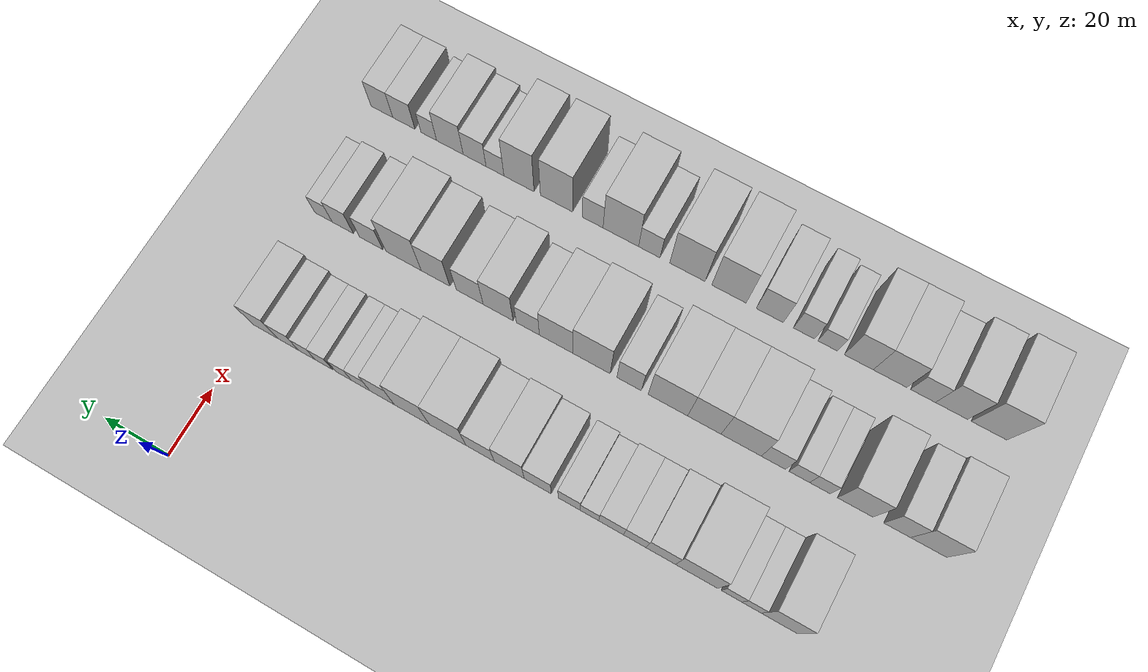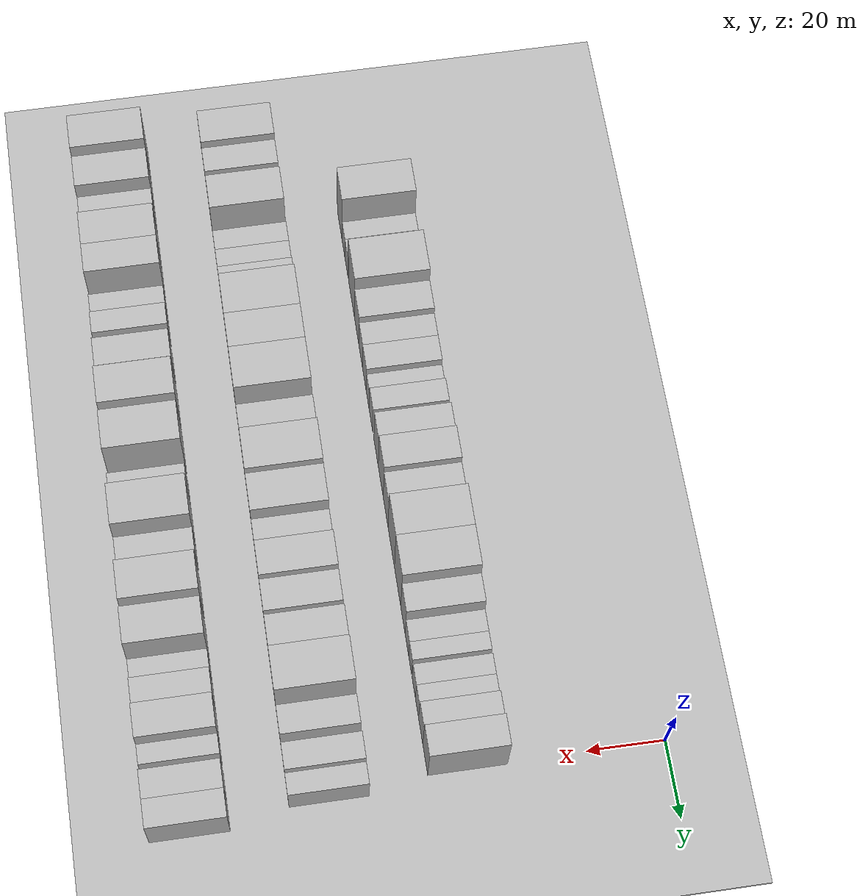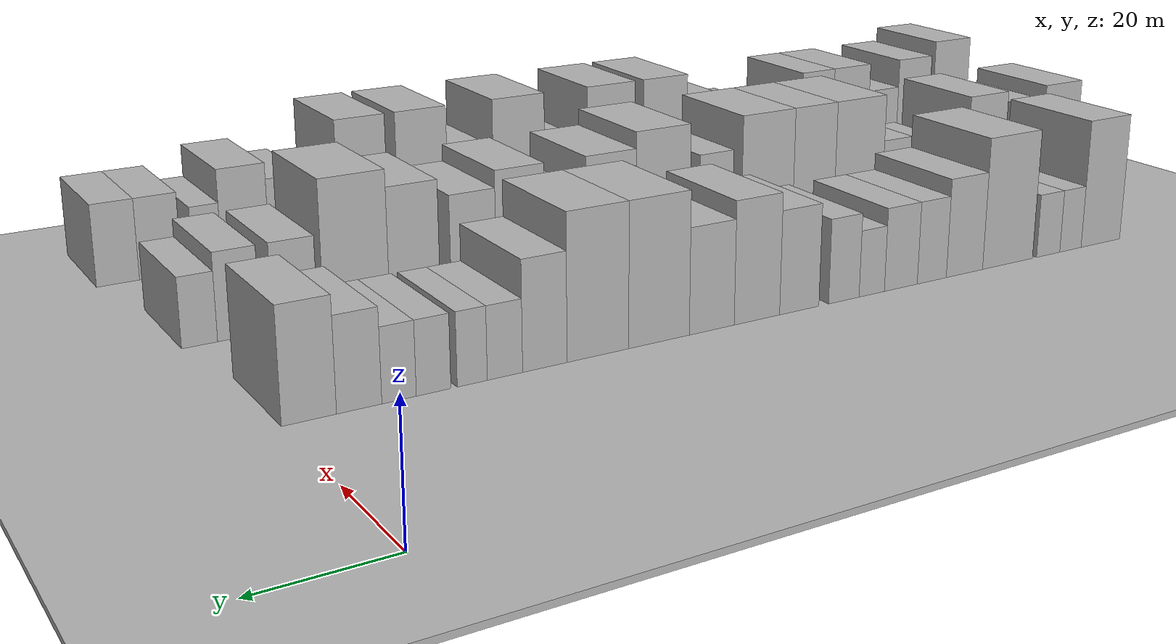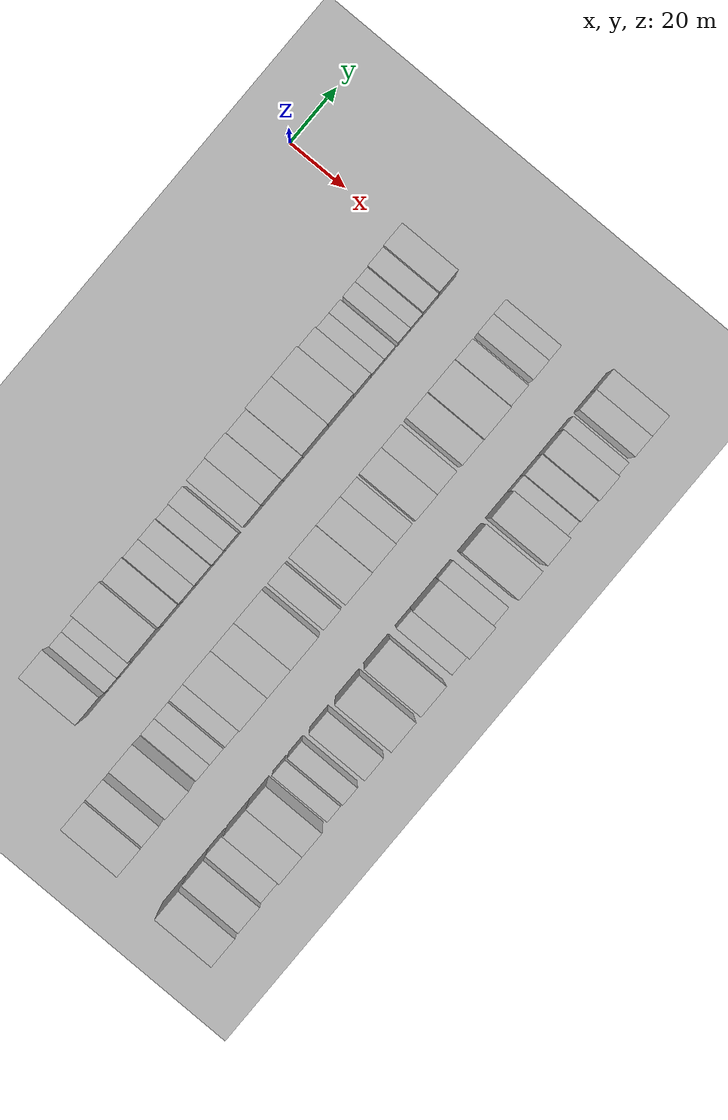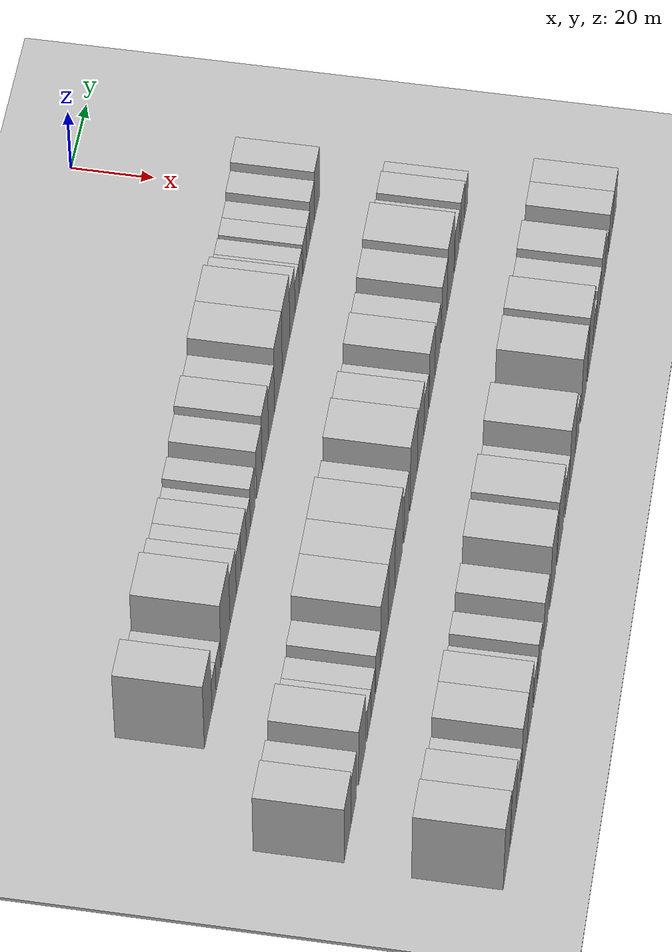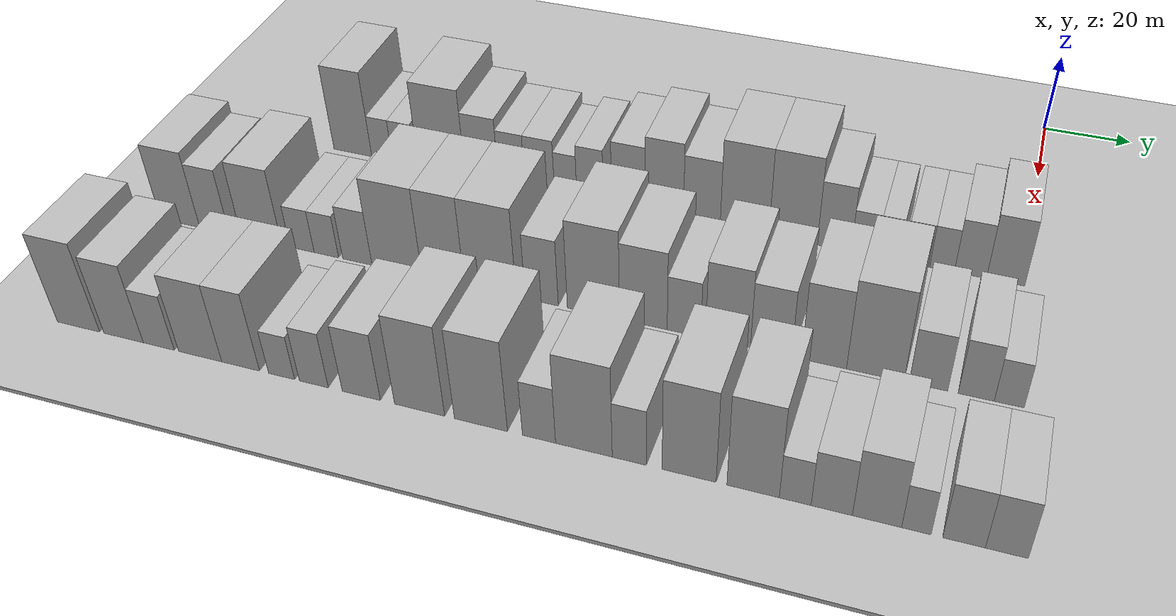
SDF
<sdf version="1.6">
 <world name="default">
  <include><name>ground_plane_1</name><uri>model://HANNAS_ground_plane</uri></include>
  <include>
   <name>ground_plane_2</name>
   <uri>model://HANNAS_ground_plane</uri>
   <pose>100 0 0  0 0 0</pose>
  </include>
  <model name="building_20">
   <static>1</static>
   <pose>50.0000 -155.9220 0 0.000000 0.000000 0.000000</pose>
   <link name="link">
    <pose>0 0 12.00 0 0 0</pose>
    <collision name="collision"><geometry><box><size>20.0000 9.9083 24.0000</size></box></geometry></collision>
    <visual name="visual">
     <cast_shadows>0</cast_shadows>
     <geometry><box><size>20.0000 9.9083 24.0000</size></box></geometry>
     <material>
      <script>
       <uri>model://HANNAS_wall/materials/scripts</uri>
       <uri>model://HANNAS_wall/materials/textures</uri>
       <name>vrc/HANNAS_wall</name>
      </script>
     </material>
    </visual>
   </link>
  </model>
  <model name="building_21">
   <static>1</static>
   <pose>50.0000 -148.2949 0 0.000000 0.000000 0.000000</pose>
   <link name="link">
    <pose>0 0 6.00 0 0 0</pose>
    <collision name="collision"><geometry><box><size>20.0000 5.3460 12.0000</size></box></geometry></collision>
    <visual name="visual">
     <cast_shadows>0</cast_shadows>
     <geometry><box><size>20.0000 5.3460 12.0000</size></box></geometry>
     <material>
      <script>
       <uri>model://HANNAS_wall/materials/scripts</uri>
       <uri>model://HANNAS_wall/materials/textures</uri>
       <name>vrc/HANNAS_wall</name>
      </script>
     </material>
    </visual>
   </link>
  </model>
  <model name="building_22">
   <static>1</static>
   <pose>50.0000 -142.7699 0 0.000000 0.000000 0.000000</pose>
   <link name="link">
    <pose>0 0 6.00 0 0 0</pose>
    <collision name="collision"><geometry><box><size>20.0000 5.7038 12.0000</size></box></geometry></collision>
    <visual name="visual">
     <cast_shadows>0</cast_shadows>
     <geometry><box><size>20.0000 5.7038 12.0000</size></box></geometry>
     <material>
      <script>
       <uri>model://HANNAS_wall/materials/scripts</uri>
       <uri>model://HANNAS_wall/materials/textures</uri>
       <name>vrc/HANNAS_wall</name>
      </script>
     </material>
    </visual>
   </link>
  </model>
  <model name="building_23">
   <static>1</static>
   <pose>50.0000 -132.9776 0 0.000000 0.000000 0.000000</pose>
   <link name="link">
    <pose>0 0 12.00 0 0 0</pose>
    <collision name="collision"><geometry><box><size>20.0000 11.8810 24.0000</size></box></geometry></collision>
    <visual name="visual">
     <cast_shadows>0</cast_shadows>
     <geometry><box><size>20.0000 11.8810 24.0000</size></box></geometry>
     <material>
      <script>
       <uri>model://HANNAS_wall/materials/scripts</uri>
       <uri>model://HANNAS_wall/materials/textures</uri>
       <name>vrc/HANNAS_wall</name>
      </script>
     </material>
    </visual>
   </link>
  </model>
  <model name="building_24">
   <static>1</static>
   <pose>50.0000 -122.8641 0 0.000000 0.000000 0.000000</pose>
   <link name="link">
    <pose>0 0 9.00 0 0 0</pose>
    <collision name="collision"><geometry><box><size>20.0000 8.3459 18.0000</size></box></geometry></collision>
    <visual name="visual">
     <cast_shadows>0</cast_shadows>
     <geometry><box><size>20.0000 8.3459 18.0000</size></box></geometry>
     <material>
      <script>
       <uri>model://HANNAS_wall/materials/scripts</uri>
       <uri>model://HANNAS_wall/materials/textures</uri>
       <name>vrc/HANNAS_wall</name>
      </script>
     </material>
    </visual>
   </link>
  </model>
  <model name="building_25">
   <static>1</static>
   <pose>50.0000 -115.4376 0 0.000000 0.000000 0.000000</pose>
   <link name="link">
    <pose>0 0 7.50 0 0 0</pose>
    <collision name="collision"><geometry><box><size>20.0000 6.5071 15.0000</size></box></geometry></collision>
    <visual name="visual">
     <cast_shadows>0</cast_shadows>
     <geometry><box><size>20.0000 6.5071 15.0000</size></box></geometry>
     <material>
      <script>
       <uri>model://HANNAS_wall/materials/scripts</uri>
       <uri>model://HANNAS_wall/materials/textures</uri>
       <name>vrc/HANNAS_wall</name>
      </script>
     </material>
    </visual>
   </link>
  </model>
  <model name="building_26">
   <static>1</static>
   <pose>50.0000 -108.5881 0 0.000000 0.000000 0.000000</pose>
   <link name="link">
    <pose>0 0 7.50 0 0 0</pose>
    <collision name="collision"><geometry><box><size>20.0000 7.1920 15.0000</size></box></geometry></collision>
    <visual name="visual">
     <cast_shadows>0</cast_shadows>
     <geometry><box><size>20.0000 7.1920 15.0000</size></box></geometry>
     <material>
      <script>
       <uri>model://HANNAS_wall/materials/scripts</uri>
       <uri>model://HANNAS_wall/materials/textures</uri>
       <name>vrc/HANNAS_wall</name>
      </script>
     </material>
    </visual>
   </link>
  </model>
  <model name="building_27">
   <static>1</static>
   <pose>50.0000 -102.2890 0 0.000000 0.000000 0.000000</pose>
   <link name="link">
    <pose>0 0 6.00 0 0 0</pose>
    <collision name="collision"><geometry><box><size>20.0000 5.4062 12.0000</size></box></geometry></collision>
    <visual name="visual">
     <cast_shadows>0</cast_shadows>
     <geometry><box><size>20.0000 5.4062 12.0000</size></box></geometry>
     <material>
      <script>
       <uri>model://HANNAS_wall/materials/scripts</uri>
       <uri>model://HANNAS_wall/materials/textures</uri>
       <name>vrc/HANNAS_wall</name>
      </script>
     </material>
    </visual>
   </link>
  </model>
  <model name="building_28">
   <static>1</static>
   <pose>50.0000 -96.3945 0 0.000000 0.000000 0.000000</pose>
   <link name="link">
    <pose>0 0 7.50 0 0 0</pose>
    <collision name="collision"><geometry><box><size>20.0000 6.3829 15.0000</size></box></geometry></collision>
    <visual name="visual">
     <cast_shadows>0</cast_shadows>
     <geometry><box><size>20.0000 6.3829 15.0000</size></box></geometry>
     <material>
      <script>
       <uri>model://HANNAS_wall/materials/scripts</uri>
       <uri>model://HANNAS_wall/materials/textures</uri>
       <name>vrc/HANNAS_wall</name>
      </script>
     </material>
    </visual>
   </link>
  </model>
  <model name="building_29">
   <static>1</static>
   <pose>50.0000 -87.2331 0 0.000000 0.000000 0.000000</pose>
   <link name="link">
    <pose>0 0 9.00 0 0 0</pose>
    <collision name="collision"><geometry><box><size>20.0000 7.9398 18.0000</size></box></geometry></collision>
    <visual name="visual">
     <cast_shadows>0</cast_shadows>
     <geometry><box><size>20.0000 7.9398 18.0000</size></box></geometry>
     <material>
      <script>
       <uri>model://HANNAS_wall/materials/scripts</uri>
       <uri>model://HANNAS_wall/materials/textures</uri>
       <name>vrc/HANNAS_wall</name>
      </script>
     </material>
    </visual>
   </link>
  </model>
  <model name="building_30">
   <static>1</static>
   <pose>50.0000 -78.8094 0 0.000000 0.000000 0.000000</pose>
   <link name="link">
    <pose>0 0 10.50 0 0 0</pose>
    <collision name="collision"><geometry><box><size>20.0000 8.9076 21.0000</size></box></geometry></collision>
    <visual name="visual">
     <cast_shadows>0</cast_shadows>
     <geometry><box><size>20.0000 8.9076 21.0000</size></box></geometry>
     <material>
      <script>
       <uri>model://HANNAS_wall/materials/scripts</uri>
       <uri>model://HANNAS_wall/materials/textures</uri>
       <name>vrc/HANNAS_wall</name>
      </script>
     </material>
    </visual>
   </link>
  </model>
  <model name="building_31">
   <static>1</static>
   <pose>50.0000 -70.1065 0 0.000000 0.000000 0.000000</pose>
   <link name="link">
    <pose>0 0 9.00 0 0 0</pose>
    <collision name="collision"><geometry><box><size>20.0000 8.4981 18.0000</size></box></geometry></collision>
    <visual name="visual">
     <cast_shadows>0</cast_shadows>
     <geometry><box><size>20.0000 8.4981 18.0000</size></box></geometry>
     <material>
      <script>
       <uri>model://HANNAS_wall/materials/scripts</uri>
       <uri>model://HANNAS_wall/materials/textures</uri>
       <name>vrc/HANNAS_wall</name>
      </script>
     </material>
    </visual>
   </link>
  </model>
  <model name="building_32">
   <static>1</static>
   <pose>50.0000 -60.3243 0 0.000000 0.000000 0.000000</pose>
   <link name="link">
    <pose>0 0 12.00 0 0 0</pose>
    <collision name="collision"><geometry><box><size>20.0000 11.0664 24.0000</size></box></geometry></collision>
    <visual name="visual">
     <cast_shadows>0</cast_shadows>
     <geometry><box><size>20.0000 11.0664 24.0000</size></box></geometry>
     <material>
      <script>
       <uri>model://HANNAS_wall/materials/scripts</uri>
       <uri>model://HANNAS_wall/materials/textures</uri>
       <name>vrc/HANNAS_wall</name>
      </script>
     </material>
    </visual>
   </link>
  </model>
  <model name="building_33">
   <static>1</static>
   <pose>50.0000 -49.4066 0 0.000000 0.000000 0.000000</pose>
   <link name="link">
    <pose>0 0 12.00 0 0 0</pose>
    <collision name="collision"><geometry><box><size>20.0000 10.7689 24.0000</size></box></geometry></collision>
    <visual name="visual">
     <cast_shadows>0</cast_shadows>
     <geometry><box><size>20.0000 10.7689 24.0000</size></box></geometry>
     <material>
      <script>
       <uri>model://HANNAS_wall/materials/scripts</uri>
       <uri>model://HANNAS_wall/materials/textures</uri>
       <name>vrc/HANNAS_wall</name>
      </script>
     </material>
    </visual>
   </link>
  </model>
  <model name="building_34">
   <static>1</static>
   <pose>50.0000 -40.2784 0 0.000000 0.000000 0.000000</pose>
   <link name="link">
    <pose>0 0 9.00 0 0 0</pose>
    <collision name="collision"><geometry><box><size>20.0000 7.4877 18.0000</size></box></geometry></collision>
    <visual name="visual">
     <cast_shadows>0</cast_shadows>
     <geometry><box><size>20.0000 7.4877 18.0000</size></box></geometry>
     <material>
      <script>
       <uri>model://HANNAS_wall/materials/scripts</uri>
       <uri>model://HANNAS_wall/materials/textures</uri>
       <name>vrc/HANNAS_wall</name>
      </script>
     </material>
    </visual>
   </link>
  </model>
  <model name="building_35">
   <static>1</static>
   <pose>50.0000 -33.6396 0 0.000000 0.000000 0.000000</pose>
   <link name="link">
    <pose>0 0 6.00 0 0 0</pose>
    <collision name="collision"><geometry><box><size>20.0000 5.7900 12.0000</size></box></geometry></collision>
    <visual name="visual">
     <cast_shadows>0</cast_shadows>
     <geometry><box><size>20.0000 5.7900 12.0000</size></box></geometry>
     <material>
      <script>
       <uri>model://HANNAS_wall/materials/scripts</uri>
       <uri>model://HANNAS_wall/materials/textures</uri>
       <name>vrc/HANNAS_wall</name>
      </script>
     </material>
    </visual>
   </link>
  </model>
  <model name="building_36">
   <static>1</static>
   <pose>50.0000 -28.3302 0 0.000000 0.000000 0.000000</pose>
   <link name="link">
    <pose>0 0 6.00 0 0 0</pose>
    <collision name="collision"><geometry><box><size>20.0000 4.8289 12.0000</size></box></geometry></collision>
    <visual name="visual">
     <cast_shadows>0</cast_shadows>
     <geometry><box><size>20.0000 4.8289 12.0000</size></box></geometry>
     <material>
      <script>
       <uri>model://HANNAS_wall/materials/scripts</uri>
       <uri>model://HANNAS_wall/materials/textures</uri>
       <name>vrc/HANNAS_wall</name>
      </script>
     </material>
    </visual>
   </link>
  </model>
  <model name="building_37">
   <static>1</static>
   <pose>50.0000 -22.2142 0 0.000000 0.000000 0.000000</pose>
   <link name="link">
    <pose>0 0 6.00 0 0 0</pose>
    <collision name="collision"><geometry><box><size>20.0000 5.4031 12.0000</size></box></geometry></collision>
    <visual name="visual">
     <cast_shadows>0</cast_shadows>
     <geometry><box><size>20.0000 5.4031 12.0000</size></box></geometry>
     <material>
      <script>
       <uri>model://HANNAS_wall/materials/scripts</uri>
       <uri>model://HANNAS_wall/materials/textures</uri>
       <name>vrc/HANNAS_wall</name>
      </script>
     </material>
    </visual>
   </link>
  </model>
  <model name="building_38">
   <static>1</static>
   <pose>50.0000 -16.8814 0 0.000000 0.000000 0.000000</pose>
   <link name="link">
    <pose>0 0 6.00 0 0 0</pose>
    <collision name="collision"><geometry><box><size>20.0000 5.2625 12.0000</size></box></geometry></collision>
    <visual name="visual">
     <cast_shadows>0</cast_shadows>
     <geometry><box><size>20.0000 5.2625 12.0000</size></box></geometry>
     <material>
      <script>
       <uri>model://HANNAS_wall/materials/scripts</uri>
       <uri>model://HANNAS_wall/materials/textures</uri>
       <name>vrc/HANNAS_wall</name>
      </script>
     </material>
    </visual>
   </link>
  </model>
  <model name="building_39">
   <static>1</static>
   <pose>50.0000 -10.8758 0 0.000000 0.000000 0.000000</pose>
   <link name="link">
    <pose>0 0 7.50 0 0 0</pose>
    <collision name="collision"><geometry><box><size>20.0000 6.7487 15.0000</size></box></geometry></collision>
    <visual name="visual">
     <cast_shadows>0</cast_shadows>
     <geometry><box><size>20.0000 6.7487 15.0000</size></box></geometry>
     <material>
      <script>
       <uri>model://HANNAS_wall/materials/scripts</uri>
       <uri>model://HANNAS_wall/materials/textures</uri>
       <name>vrc/HANNAS_wall</name>
      </script>
     </material>
    </visual>
   </link>
  </model>
  <model name="building_40">
   <static>1</static>
   <pose>50.0000 -3.5136 0 0.000000 0.000000 0.000000</pose>
   <link name="link">
    <pose>0 0 9.00 0 0 0</pose>
    <collision name="collision"><geometry><box><size>20.0000 7.9757 18.0000</size></box></geometry></collision>
    <visual name="visual">
     <cast_shadows>0</cast_shadows>
     <geometry><box><size>20.0000 7.9757 18.0000</size></box></geometry>
     <material>
      <script>
       <uri>model://HANNAS_wall/materials/scripts</uri>
       <uri>model://HANNAS_wall/materials/textures</uri>
       <name>vrc/HANNAS_wall</name>
      </script>
     </material>
    </visual>
   </link>
  </model>
  <model name="building_103">
   <static>1</static>
   <pose>85.0000 -180.6972 0 0.000000 0.000000 0.000000</pose>
   <link name="link">
    <pose>0 0 10.50 0 0 0</pose>
    <collision name="collision"><geometry><box><size>20.0000 9.9502 21.0000</size></box></geometry></collision>
    <visual name="visual">
     <cast_shadows>0</cast_shadows>
     <geometry><box><size>20.0000 9.9502 21.0000</size></box></geometry>
     <material>
      <script>
       <uri>model://HANNAS_wall/materials/scripts</uri>
       <uri>model://HANNAS_wall/materials/textures</uri>
       <name>vrc/HANNAS_wall</name>
      </script>
     </material>
    </visual>
   </link>
  </model>
  <model name="building_104">
   <static>1</static>
   <pose>85.0000 -172.0130 0 0.000000 0.000000 0.000000</pose>
   <link name="link">
    <pose>0 0 9.00 0 0 0</pose>
    <collision name="collision"><geometry><box><size>20.0000 7.4181 18.0000</size></box></geometry></collision>
    <visual name="visual">
     <cast_shadows>0</cast_shadows>
     <geometry><box><size>20.0000 7.4181 18.0000</size></box></geometry>
     <material>
      <script>
       <uri>model://HANNAS_wall/materials/scripts</uri>
       <uri>model://HANNAS_wall/materials/textures</uri>
       <name>vrc/HANNAS_wall</name>
      </script>
     </material>
    </visual>
   </link>
  </model>
  <model name="building_105">
   <static>1</static>
   <pose>85.0000 -160.3200 0 0.000000 0.000000 0.000000</pose>
   <link name="link">
    <pose>0 0 10.50 0 0 0</pose>
    <collision name="collision"><geometry><box><size>20.0000 9.9679 21.0000</size></box></geometry></collision>
    <visual name="visual">
     <cast_shadows>0</cast_shadows>
     <geometry><box><size>20.0000 9.9679 21.0000</size></box></geometry>
     <material>
      <script>
       <uri>model://HANNAS_wall/materials/scripts</uri>
       <uri>model://HANNAS_wall/materials/textures</uri>
       <name>vrc/HANNAS_wall</name>
      </script>
     </material>
    </visual>
   </link>
  </model>
  <model name="building_106">
   <static>1</static>
   <pose>85.0000 -150.4107 0 0.000000 0.000000 0.000000</pose>
   <link name="link">
    <pose>0 0 6.00 0 0 0</pose>
    <collision name="collision"><geometry><box><size>20.0000 5.8508 12.0000</size></box></geometry></collision>
    <visual name="visual">
     <cast_shadows>0</cast_shadows>
     <geometry><box><size>20.0000 5.8508 12.0000</size></box></geometry>
     <material>
      <script>
       <uri>model://HANNAS_wall/materials/scripts</uri>
       <uri>model://HANNAS_wall/materials/textures</uri>
       <name>vrc/HANNAS_wall</name>
      </script>
     </material>
    </visual>
   </link>
  </model>
  <model name="building_107">
   <static>1</static>
   <pose>85.0000 -144.5502 0 0.000000 0.000000 0.000000</pose>
   <link name="link">
    <pose>0 0 6.00 0 0 0</pose>
    <collision name="collision"><geometry><box><size>20.0000 5.8700 12.0000</size></box></geometry></collision>
    <visual name="visual">
     <cast_shadows>0</cast_shadows>
     <geometry><box><size>20.0000 5.8700 12.0000</size></box></geometry>
     <material>
      <script>
       <uri>model://HANNAS_wall/materials/scripts</uri>
       <uri>model://HANNAS_wall/materials/textures</uri>
       <name>vrc/HANNAS_wall</name>
      </script>
     </material>
    </visual>
   </link>
  </model>
  <model name="building_108">
   <static>1</static>
   <pose>85.0000 -137.1453 0 0.000000 0.000000 0.000000</pose>
   <link name="link">
    <pose>0 0 7.50 0 0 0</pose>
    <collision name="collision"><geometry><box><size>20.0000 6.9399 15.0000</size></box></geometry></collision>
    <visual name="visual">
     <cast_shadows>0</cast_shadows>
     <geometry><box><size>20.0000 6.9399 15.0000</size></box></geometry>
     <material>
      <script>
       <uri>model://HANNAS_wall/materials/scripts</uri>
       <uri>model://HANNAS_wall/materials/textures</uri>
       <name>vrc/HANNAS_wall</name>
      </script>
     </material>
    </visual>
   </link>
  </model>
  <model name="building_109">
   <static>1</static>
   <pose>85.0000 -127.8281 0 0.000000 0.000000 0.000000</pose>
   <link name="link">
    <pose>0 0 12.00 0 0 0</pose>
    <collision name="collision"><geometry><box><size>20.0000 11.6945 24.0000</size></box></geometry></collision>
    <visual name="visual">
     <cast_shadows>0</cast_shadows>
     <geometry><box><size>20.0000 11.6945 24.0000</size></box></geometry>
     <material>
      <script>
       <uri>model://HANNAS_wall/materials/scripts</uri>
       <uri>model://HANNAS_wall/materials/textures</uri>
       <name>vrc/HANNAS_wall</name>
      </script>
     </material>
    </visual>
   </link>
  </model>
  <model name="building_110">
   <static>1</static>
   <pose>85.0000 -117.0891 0 0.000000 0.000000 0.000000</pose>
   <link name="link">
    <pose>0 0 12.00 0 0 0</pose>
    <collision name="collision"><geometry><box><size>20.0000 9.7834 24.0000</size></box></geometry></collision>
    <visual name="visual">
     <cast_shadows>0</cast_shadows>
     <geometry><box><size>20.0000 9.7834 24.0000</size></box></geometry>
     <material>
      <script>
       <uri>model://HANNAS_wall/materials/scripts</uri>
       <uri>model://HANNAS_wall/materials/textures</uri>
       <name>vrc/HANNAS_wall</name>
      </script>
     </material>
    </visual>
   </link>
  </model>
  <model name="building_111">
   <static>1</static>
   <pose>85.0000 -106.3366 0 0.000000 0.000000 0.000000</pose>
   <link name="link">
    <pose>0 0 12.00 0 0 0</pose>
    <collision name="collision"><geometry><box><size>20.0000 11.7218 24.0000</size></box></geometry></collision>
    <visual name="visual">
     <cast_shadows>0</cast_shadows>
     <geometry><box><size>20.0000 11.7218 24.0000</size></box></geometry>
     <material>
      <script>
       <uri>model://HANNAS_wall/materials/scripts</uri>
       <uri>model://HANNAS_wall/materials/textures</uri>
       <name>vrc/HANNAS_wall</name>
      </script>
     </material>
    </visual>
   </link>
  </model>
  <model name="building_112">
   <static>1</static>
   <pose>85.0000 -94.8244 0 0.000000 0.000000 0.000000</pose>
   <link name="link">
    <pose>0 0 9.00 0 0 0</pose>
    <collision name="collision"><geometry><box><size>20.0000 7.3027 18.0000</size></box></geometry></collision>
    <visual name="visual">
     <cast_shadows>0</cast_shadows>
     <geometry><box><size>20.0000 7.3027 18.0000</size></box></geometry>
     <material>
      <script>
       <uri>model://HANNAS_wall/materials/scripts</uri>
       <uri>model://HANNAS_wall/materials/textures</uri>
       <name>vrc/HANNAS_wall</name>
      </script>
     </material>
    </visual>
   </link>
  </model>
  <model name="building_113">
   <static>1</static>
   <pose>85.0000 -83.4842 0 0.000000 0.000000 0.000000</pose>
   <link name="link">
    <pose>0 0 12.00 0 0 0</pose>
    <collision name="collision"><geometry><box><size>20.0000 11.3776 24.0000</size></box></geometry></collision>
    <visual name="visual">
     <cast_shadows>0</cast_shadows>
     <geometry><box><size>20.0000 11.3776 24.0000</size></box></geometry>
     <material>
      <script>
       <uri>model://HANNAS_wall/materials/scripts</uri>
       <uri>model://HANNAS_wall/materials/textures</uri>
       <name>vrc/HANNAS_wall</name>
      </script>
     </material>
    </visual>
   </link>
  </model>
  <model name="building_114">
   <static>1</static>
   <pose>85.0000 -72.7227 0 0.000000 0.000000 0.000000</pose>
   <link name="link">
    <pose>0 0 10.50 0 0 0</pose>
    <collision name="collision"><geometry><box><size>20.0000 10.1453 21.0000</size></box></geometry></collision>
    <visual name="visual">
     <cast_shadows>0</cast_shadows>
     <geometry><box><size>20.0000 10.1453 21.0000</size></box></geometry>
     <material>
      <script>
       <uri>model://HANNAS_wall/materials/scripts</uri>
       <uri>model://HANNAS_wall/materials/textures</uri>
       <name>vrc/HANNAS_wall</name>
      </script>
     </material>
    </visual>
   </link>
  </model>
  <model name="building_115">
   <static>1</static>
   <pose>85.0000 -64.1096 0 0.000000 0.000000 0.000000</pose>
   <link name="link">
    <pose>0 0 7.50 0 0 0</pose>
    <collision name="collision"><geometry><box><size>20.0000 7.0810 15.0000</size></box></geometry></collision>
    <visual name="visual">
     <cast_shadows>0</cast_shadows>
     <geometry><box><size>20.0000 7.0810 15.0000</size></box></geometry>
     <material>
      <script>
       <uri>model://HANNAS_wall/materials/scripts</uri>
       <uri>model://HANNAS_wall/materials/textures</uri>
       <name>vrc/HANNAS_wall</name>
      </script>
     </material>
    </visual>
   </link>
  </model>
  <model name="building_116">
   <static>1</static>
   <pose>85.0000 -54.9142 0 0.000000 0.000000 0.000000</pose>
   <link name="link">
    <pose>0 0 10.50 0 0 0</pose>
    <collision name="collision"><geometry><box><size>20.0000 9.3097 21.0000</size></box></geometry></collision>
    <visual name="visual">
     <cast_shadows>0</cast_shadows>
     <geometry><box><size>20.0000 9.3097 21.0000</size></box></geometry>
     <material>
      <script>
       <uri>model://HANNAS_wall/materials/scripts</uri>
       <uri>model://HANNAS_wall/materials/textures</uri>
       <name>vrc/HANNAS_wall</name>
      </script>
     </material>
    </visual>
   </link>
  </model>
  <model name="building_117">
   <static>1</static>
   <pose>85.0000 -46.0557 0 0.000000 0.000000 0.000000</pose>
   <link name="link">
    <pose>0 0 9.00 0 0 0</pose>
    <collision name="collision"><geometry><box><size>20.0000 8.4073 18.0000</size></box></geometry></collision>
    <visual name="visual">
     <cast_shadows>0</cast_shadows>
     <geometry><box><size>20.0000 8.4073 18.0000</size></box></geometry>
     <material>
      <script>
       <uri>model://HANNAS_wall/materials/scripts</uri>
       <uri>model://HANNAS_wall/materials/textures</uri>
       <name>vrc/HANNAS_wall</name>
      </script>
     </material>
    </visual>
   </link>
  </model>
  <model name="building_118">
   <static>1</static>
   <pose>85.0000 -35.3311 0 0.000000 0.000000 0.000000</pose>
   <link name="link">
    <pose>0 0 10.50 0 0 0</pose>
    <collision name="collision"><geometry><box><size>20.0000 9.0418 21.0000</size></box></geometry></collision>
    <visual name="visual">
     <cast_shadows>0</cast_shadows>
     <geometry><box><size>20.0000 9.0418 21.0000</size></box></geometry>
     <material>
      <script>
       <uri>model://HANNAS_wall/materials/scripts</uri>
       <uri>model://HANNAS_wall/materials/textures</uri>
       <name>vrc/HANNAS_wall</name>
      </script>
     </material>
    </visual>
   </link>
  </model>
  <model name="building_119">
   <static>1</static>
   <pose>85.0000 -25.1332 0 0.000000 0.000000 0.000000</pose>
   <link name="link">
    <pose>0 0 12.00 0 0 0</pose>
    <collision name="collision"><geometry><box><size>20.0000 11.3540 24.0000</size></box></geometry></collision>
    <visual name="visual">
     <cast_shadows>0</cast_shadows>
     <geometry><box><size>20.0000 11.3540 24.0000</size></box></geometry>
     <material>
      <script>
       <uri>model://HANNAS_wall/materials/scripts</uri>
       <uri>model://HANNAS_wall/materials/textures</uri>
       <name>vrc/HANNAS_wall</name>
      </script>
     </material>
    </visual>
   </link>
  </model>
  <model name="building_120">
   <static>1</static>
   <pose>85.0000 -14.7222 0 0.000000 0.000000 0.000000</pose>
   <link name="link">
    <pose>0 0 7.50 0 0 0</pose>
    <collision name="collision"><geometry><box><size>20.0000 7.4680 15.0000</size></box></geometry></collision>
    <visual name="visual">
     <cast_shadows>0</cast_shadows>
     <geometry><box><size>20.0000 7.4680 15.0000</size></box></geometry>
     <material>
      <script>
       <uri>model://HANNAS_wall/materials/scripts</uri>
       <uri>model://HANNAS_wall/materials/textures</uri>
       <name>vrc/HANNAS_wall</name>
      </script>
     </material>
    </visual>
   </link>
  </model>
  <model name="building_121">
   <static>1</static>
   <pose>85.0000 -5.5475 0 0.000000 0.000000 0.000000</pose>
   <link name="link">
    <pose>0 0 7.50 0 0 0</pose>
    <collision name="collision"><geometry><box><size>20.0000 6.8814 15.0000</size></box></geometry></collision>
    <visual name="visual">
     <cast_shadows>0</cast_shadows>
     <geometry><box><size>20.0000 6.8814 15.0000</size></box></geometry>
     <material>
      <script>
       <uri>model://HANNAS_wall/materials/scripts</uri>
       <uri>model://HANNAS_wall/materials/textures</uri>
       <name>vrc/HANNAS_wall</name>
      </script>
     </material>
    </visual>
   </link>
  </model>
  <model name="building_122">
   <static>1</static>
   <pose>85.0000 0.7151 0 0.000000 0.000000 0.000000</pose>
   <link name="link">
    <pose>0 0 6.00 0 0 0</pose>
    <collision name="collision"><geometry><box><size>20.0000 5.6439 12.0000</size></box></geometry></collision>
    <visual name="visual">
     <cast_shadows>0</cast_shadows>
     <geometry><box><size>20.0000 5.6439 12.0000</size></box></geometry>
     <material>
      <script>
       <uri>model://HANNAS_wall/materials/scripts</uri>
       <uri>model://HANNAS_wall/materials/textures</uri>
       <name>vrc/HANNAS_wall</name>
      </script>
     </material>
    </visual>
   </link>
  </model>
  <model name="building_189">
   <static>1</static>
   <pose>120.0000 -182.2483 0 0.000000 0.000000 0.000000</pose>
   <link name="link">
    <pose>0 0 12.00 0 0 0</pose>
    <collision name="collision"><geometry><box><size>20.0000 10.0229 24.0000</size></box></geometry></collision>
    <visual name="visual">
     <cast_shadows>0</cast_shadows>
     <geometry><box><size>20.0000 10.0229 24.0000</size></box></geometry>
     <material>
      <script>
       <uri>model://HANNAS_wall/materials/scripts</uri>
       <uri>model://HANNAS_wall/materials/textures</uri>
       <name>vrc/HANNAS_wall</name>
      </script>
     </material>
    </visual>
   </link>
  </model>
  <model name="building_190">
   <static>1</static>
   <pose>120.0000 -171.6514 0 0.000000 0.000000 0.000000</pose>
   <link name="link">
    <pose>0 0 10.50 0 0 0</pose>
    <collision name="collision"><geometry><box><size>20.0000 9.1709 21.0000</size></box></geometry></collision>
    <visual name="visual">
     <cast_shadows>0</cast_shadows>
     <geometry><box><size>20.0000 9.1709 21.0000</size></box></geometry>
     <material>
      <script>
       <uri>model://HANNAS_wall/materials/scripts</uri>
       <uri>model://HANNAS_wall/materials/textures</uri>
       <name>vrc/HANNAS_wall</name>
      </script>
     </material>
    </visual>
   </link>
  </model>
  <model name="building_191">
   <static>1</static>
   <pose>120.0000 -163.4932 0 0.000000 0.000000 0.000000</pose>
   <link name="link">
    <pose>0 0 7.50 0 0 0</pose>
    <collision name="collision"><geometry><box><size>20.0000 7.1453 15.0000</size></box></geometry></collision>
    <visual name="visual">
     <cast_shadows>0</cast_shadows>
     <geometry><box><size>20.0000 7.1453 15.0000</size></box></geometry>
     <material>
      <script>
       <uri>model://HANNAS_wall/materials/scripts</uri>
       <uri>model://HANNAS_wall/materials/textures</uri>
       <name>vrc/HANNAS_wall</name>
      </script>
     </material>
    </visual>
   </link>
  </model>
  <model name="building_192">
   <static>1</static>
   <pose>120.0000 -154.0620 0 0.000000 0.000000 0.000000</pose>
   <link name="link">
    <pose>0 0 10.50 0 0 0</pose>
    <collision name="collision"><geometry><box><size>20.0000 9.7171 21.0000</size></box></geometry></collision>
    <visual name="visual">
     <cast_shadows>0</cast_shadows>
     <geometry><box><size>20.0000 9.7171 21.0000</size></box></geometry>
     <material>
      <script>
       <uri>model://HANNAS_wall/materials/scripts</uri>
       <uri>model://HANNAS_wall/materials/textures</uri>
       <name>vrc/HANNAS_wall</name>
      </script>
     </material>
    </visual>
   </link>
  </model>
  <model name="building_193">
   <static>1</static>
   <pose>120.0000 -144.9900 0 0.000000 0.000000 0.000000</pose>
   <link name="link">
    <pose>0 0 10.50 0 0 0</pose>
    <collision name="collision"><geometry><box><size>20.0000 8.4270 21.0000</size></box></geometry></collision>
    <visual name="visual">
     <cast_shadows>0</cast_shadows>
     <geometry><box><size>20.0000 8.4270 21.0000</size></box></geometry>
     <material>
      <script>
       <uri>model://HANNAS_wall/materials/scripts</uri>
       <uri>model://HANNAS_wall/materials/textures</uri>
       <name>vrc/HANNAS_wall</name>
      </script>
     </material>
    </visual>
   </link>
  </model>
  <model name="building_194">
   <static>1</static>
   <pose>120.0000 -135.9140 0 0.000000 0.000000 0.000000</pose>
   <link name="link">
    <pose>0 0 6.00 0 0 0</pose>
    <collision name="collision"><geometry><box><size>20.0000 5.7248 12.0000</size></box></geometry></collision>
    <visual name="visual">
     <cast_shadows>0</cast_shadows>
     <geometry><box><size>20.0000 5.7248 12.0000</size></box></geometry>
     <material>
      <script>
       <uri>model://HANNAS_wall/materials/scripts</uri>
       <uri>model://HANNAS_wall/materials/textures</uri>
       <name>vrc/HANNAS_wall</name>
      </script>
     </material>
    </visual>
   </link>
  </model>
  <model name="building_195">
   <static>1</static>
   <pose>120.0000 -128.9105 0 0.000000 0.000000 0.000000</pose>
   <link name="link">
    <pose>0 0 7.50 0 0 0</pose>
    <collision name="collision"><geometry><box><size>20.0000 6.2823 15.0000</size></box></geometry></collision>
    <visual name="visual">
     <cast_shadows>0</cast_shadows>
     <geometry><box><size>20.0000 6.2823 15.0000</size></box></geometry>
     <material>
      <script>
       <uri>model://HANNAS_wall/materials/scripts</uri>
       <uri>model://HANNAS_wall/materials/textures</uri>
       <name>vrc/HANNAS_wall</name>
      </script>
     </material>
    </visual>
   </link>
  </model>
  <model name="building_196">
   <static>1</static>
   <pose>120.0000 -118.7178 0 0.000000 0.000000 0.000000</pose>
   <link name="link">
    <pose>0 0 9.00 0 0 0</pose>
    <collision name="collision"><geometry><box><size>20.0000 8.1029 18.0000</size></box></geometry></collision>
    <visual name="visual">
     <cast_shadows>0</cast_shadows>
     <geometry><box><size>20.0000 8.1029 18.0000</size></box></geometry>
     <material>
      <script>
       <uri>model://HANNAS_wall/materials/scripts</uri>
       <uri>model://HANNAS_wall/materials/textures</uri>
       <name>vrc/HANNAS_wall</name>
      </script>
     </material>
    </visual>
   </link>
  </model>
  <model name="building_197">
   <static>1</static>
   <pose>120.0000 -106.4503 0 0.000000 0.000000 0.000000</pose>
   <link name="link">
    <pose>0 0 12.00 0 0 0</pose>
    <collision name="collision"><geometry><box><size>20.0000 10.4323 24.0000</size></box></geometry></collision>
    <visual name="visual">
     <cast_shadows>0</cast_shadows>
     <geometry><box><size>20.0000 10.4323 24.0000</size></box></geometry>
     <material>
      <script>
       <uri>model://HANNAS_wall/materials/scripts</uri>
       <uri>model://HANNAS_wall/materials/textures</uri>
       <name>vrc/HANNAS_wall</name>
      </script>
     </material>
    </visual>
   </link>
  </model>
  <model name="building_198">
   <static>1</static>
   <pose>120.0000 -93.8300 0 0.000000 0.000000 0.000000</pose>
   <link name="link">
    <pose>0 0 12.00 0 0 0</pose>
    <collision name="collision"><geometry><box><size>20.0000 10.8082 24.0000</size></box></geometry></collision>
    <visual name="visual">
     <cast_shadows>0</cast_shadows>
     <geometry><box><size>20.0000 10.8082 24.0000</size></box></geometry>
     <material>
      <script>
       <uri>model://HANNAS_wall/materials/scripts</uri>
       <uri>model://HANNAS_wall/materials/textures</uri>
       <name>vrc/HANNAS_wall</name>
      </script>
     </material>
    </visual>
   </link>
  </model>
  <model name="building_199">
   <static>1</static>
   <pose>120.0000 -82.1262 0 0.000000 0.000000 0.000000</pose>
   <link name="link">
    <pose>0 0 7.50 0 0 0</pose>
    <collision name="collision"><geometry><box><size>20.0000 6.5995 15.0000</size></box></geometry></collision>
    <visual name="visual">
     <cast_shadows>0</cast_shadows>
     <geometry><box><size>20.0000 6.5995 15.0000</size></box></geometry>
     <material>
      <script>
       <uri>model://HANNAS_wall/materials/scripts</uri>
       <uri>model://HANNAS_wall/materials/textures</uri>
       <name>vrc/HANNAS_wall</name>
      </script>
     </material>
    </visual>
   </link>
  </model>
  <model name="building_200">
   <static>1</static>
   <pose>120.0000 -73.2763 0 0.000000 0.000000 0.000000</pose>
   <link name="link">
    <pose>0 0 12.00 0 0 0</pose>
    <collision name="collision"><geometry><box><size>20.0000 11.1002 24.0000</size></box></geometry></collision>
    <visual name="visual">
     <cast_shadows>0</cast_shadows>
     <geometry><box><size>20.0000 11.1002 24.0000</size></box></geometry>
     <material>
      <script>
       <uri>model://HANNAS_wall/materials/scripts</uri>
       <uri>model://HANNAS_wall/materials/textures</uri>
       <name>vrc/HANNAS_wall</name>
      </script>
     </material>
    </visual>
   </link>
  </model>
  <model name="building_201">
   <static>1</static>
   <pose>120.0000 -64.4356 0 0.000000 0.000000 0.000000</pose>
   <link name="link">
    <pose>0 0 7.50 0 0 0</pose>
    <collision name="collision"><geometry><box><size>20.0000 6.5812 15.0000</size></box></geometry></collision>
    <visual name="visual">
     <cast_shadows>0</cast_shadows>
     <geometry><box><size>20.0000 6.5812 15.0000</size></box></geometry>
     <material>
      <script>
       <uri>model://HANNAS_wall/materials/scripts</uri>
       <uri>model://HANNAS_wall/materials/textures</uri>
       <name>vrc/HANNAS_wall</name>
      </script>
     </material>
    </visual>
   </link>
  </model>
  <model name="building_202">
   <static>1</static>
   <pose>120.0000 -53.0416 0 0.000000 0.000000 0.000000</pose>
   <link name="link">
    <pose>0 0 12.00 0 0 0</pose>
    <collision name="collision"><geometry><box><size>20.0000 10.2068 24.0000</size></box></geometry></collision>
    <visual name="visual">
     <cast_shadows>0</cast_shadows>
     <geometry><box><size>20.0000 10.2068 24.0000</size></box></geometry>
     <material>
      <script>
       <uri>model://HANNAS_wall/materials/scripts</uri>
       <uri>model://HANNAS_wall/materials/textures</uri>
       <name>vrc/HANNAS_wall</name>
      </script>
     </material>
    </visual>
   </link>
  </model>
  <model name="building_203">
   <static>1</static>
   <pose>120.0000 -41.0968 0 0.000000 0.000000 0.000000</pose>
   <link name="link">
    <pose>0 0 12.00 0 0 0</pose>
    <collision name="collision"><geometry><box><size>20.0000 9.6828 24.0000</size></box></geometry></collision>
    <visual name="visual">
     <cast_shadows>0</cast_shadows>
     <geometry><box><size>20.0000 9.6828 24.0000</size></box></geometry>
     <material>
      <script>
       <uri>model://HANNAS_wall/materials/scripts</uri>
       <uri>model://HANNAS_wall/materials/textures</uri>
       <name>vrc/HANNAS_wall</name>
      </script>
     </material>
    </visual>
   </link>
  </model>
  <model name="building_204">
   <static>1</static>
   <pose>120.0000 -33.3635 0 0.000000 0.000000 0.000000</pose>
   <link name="link">
    <pose>0 0 6.00 0 0 0</pose>
    <collision name="collision"><geometry><box><size>20.0000 5.7838 12.0000</size></box></geometry></collision>
    <visual name="visual">
     <cast_shadows>0</cast_shadows>
     <geometry><box><size>20.0000 5.7838 12.0000</size></box></geometry>
     <material>
      <script>
       <uri>model://HANNAS_wall/materials/scripts</uri>
       <uri>model://HANNAS_wall/materials/textures</uri>
       <name>vrc/HANNAS_wall</name>
      </script>
     </material>
    </visual>
   </link>
  </model>
  <model name="building_205">
   <static>1</static>
   <pose>120.0000 -26.7649 0 0.000000 0.000000 0.000000</pose>
   <link name="link">
    <pose>0 0 7.50 0 0 0</pose>
    <collision name="collision"><geometry><box><size>20.0000 7.4132 15.0000</size></box></geometry></collision>
    <visual name="visual">
     <cast_shadows>0</cast_shadows>
     <geometry><box><size>20.0000 7.4132 15.0000</size></box></geometry>
     <material>
      <script>
       <uri>model://HANNAS_wall/materials/scripts</uri>
       <uri>model://HANNAS_wall/materials/textures</uri>
       <name>vrc/HANNAS_wall</name>
      </script>
     </material>
    </visual>
   </link>
  </model>
  <model name="building_206">
   <static>1</static>
   <pose>120.0000 -18.7022 0 0.000000 0.000000 0.000000</pose>
   <link name="link">
    <pose>0 0 9.00 0 0 0</pose>
    <collision name="collision"><geometry><box><size>20.0000 8.7123 18.0000</size></box></geometry></collision>
    <visual name="visual">
     <cast_shadows>0</cast_shadows>
     <geometry><box><size>20.0000 8.7123 18.0000</size></box></geometry>
     <material>
      <script>
       <uri>model://HANNAS_wall/materials/scripts</uri>
       <uri>model://HANNAS_wall/materials/textures</uri>
       <name>vrc/HANNAS_wall</name>
      </script>
     </material>
    </visual>
   </link>
  </model>
  <model name="building_207">
   <static>1</static>
   <pose>120.0000 -11.7746 0 0.000000 0.000000 0.000000</pose>
   <link name="link">
    <pose>0 0 6.00 0 0 0</pose>
    <collision name="collision"><geometry><box><size>20.0000 5.1428 12.0000</size></box></geometry></collision>
    <visual name="visual">
     <cast_shadows>0</cast_shadows>
     <geometry><box><size>20.0000 5.1428 12.0000</size></box></geometry>
     <material>
      <script>
       <uri>model://HANNAS_wall/materials/scripts</uri>
       <uri>model://HANNAS_wall/materials/textures</uri>
       <name>vrc/HANNAS_wall</name>
      </script>
     </material>
    </visual>
   </link>
  </model>
  <model name="building_208">
   <static>1</static>
   <pose>120.0000 -3.5296 0 0.000000 0.000000 0.000000</pose>
   <link name="link">
    <pose>0 0 7.50 0 0 0</pose>
    <collision name="collision"><geometry><box><size>20.0000 7.3472 15.0000</size></box></geometry></collision>
    <visual name="visual">
     <cast_shadows>0</cast_shadows>
     <geometry><box><size>20.0000 7.3472 15.0000</size></box></geometry>
     <material>
      <script>
       <uri>model://HANNAS_wall/materials/scripts</uri>
       <uri>model://HANNAS_wall/materials/textures</uri>
       <name>vrc/HANNAS_wall</name>
      </script>
     </material>
    </visual>
   </link>
  </model>
  <model name="building_209">
   <static>1</static>
   <pose>120.0000 3.7809 0 0.000000 0.000000 0.000000</pose>
   <link name="link">
    <pose>0 0 7.50 0 0 0</pose>
    <collision name="collision"><geometry><box><size>20.0000 7.2739 15.0000</size></box></geometry></collision>
    <visual name="visual">
     <cast_shadows>0</cast_shadows>
     <geometry><box><size>20.0000 7.2739 15.0000</size></box></geometry>
     <material>
      <script>
       <uri>model://HANNAS_wall/materials/scripts</uri>
       <uri>model://HANNAS_wall/materials/textures</uri>
       <name>vrc/HANNAS_wall</name>
      </script>
     </material>
    </visual>
   </link>
  </model>
 </world>
</sdf>
